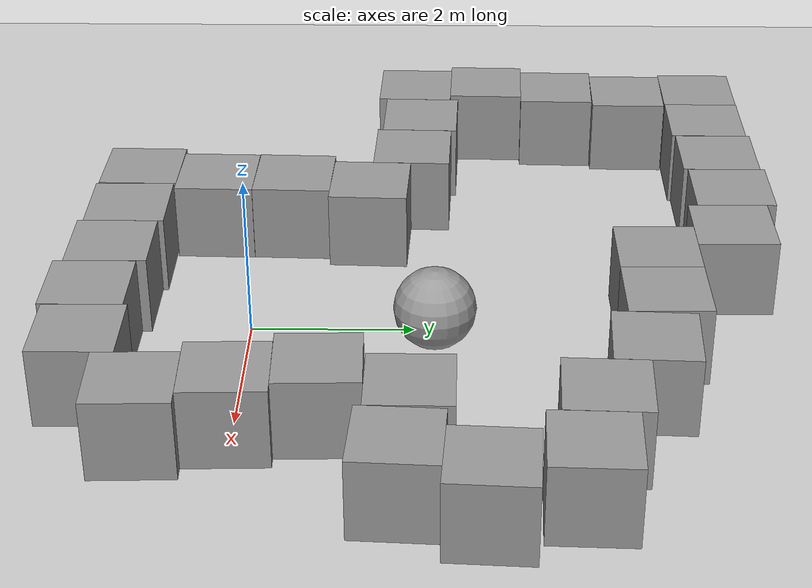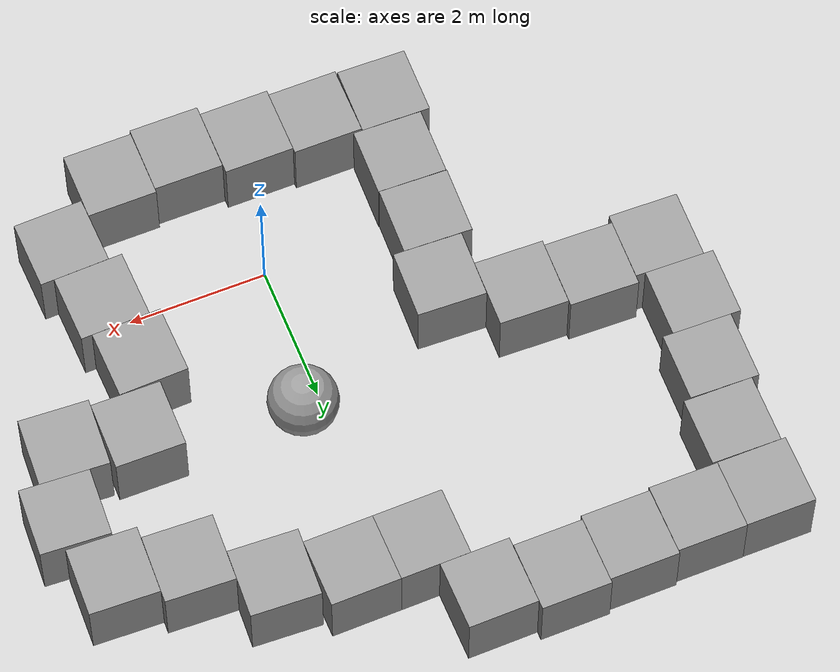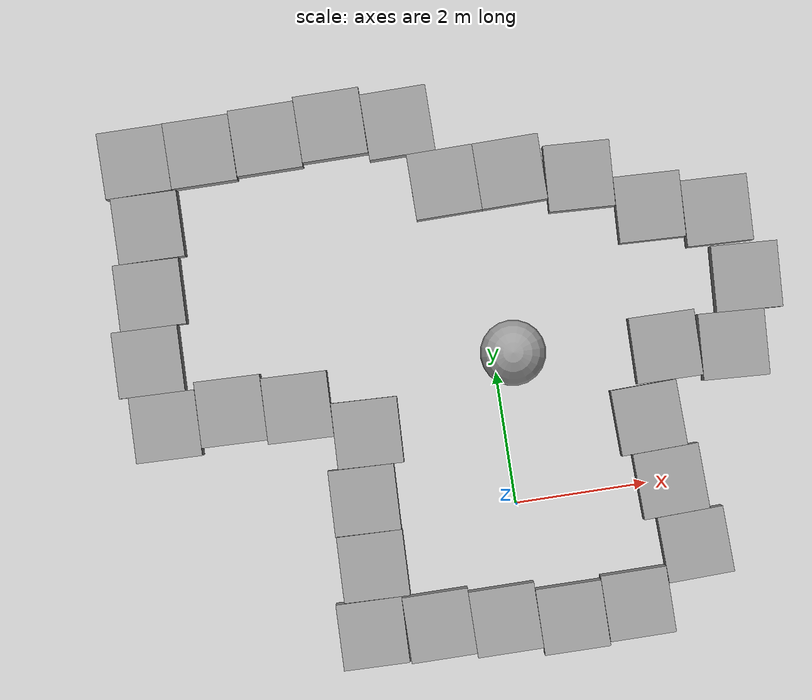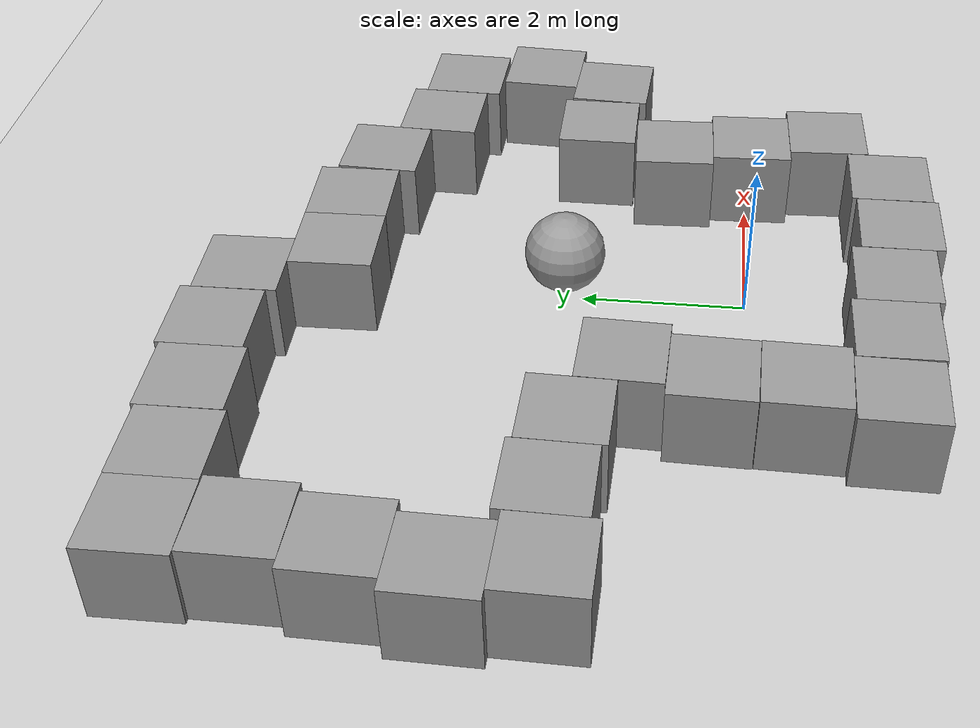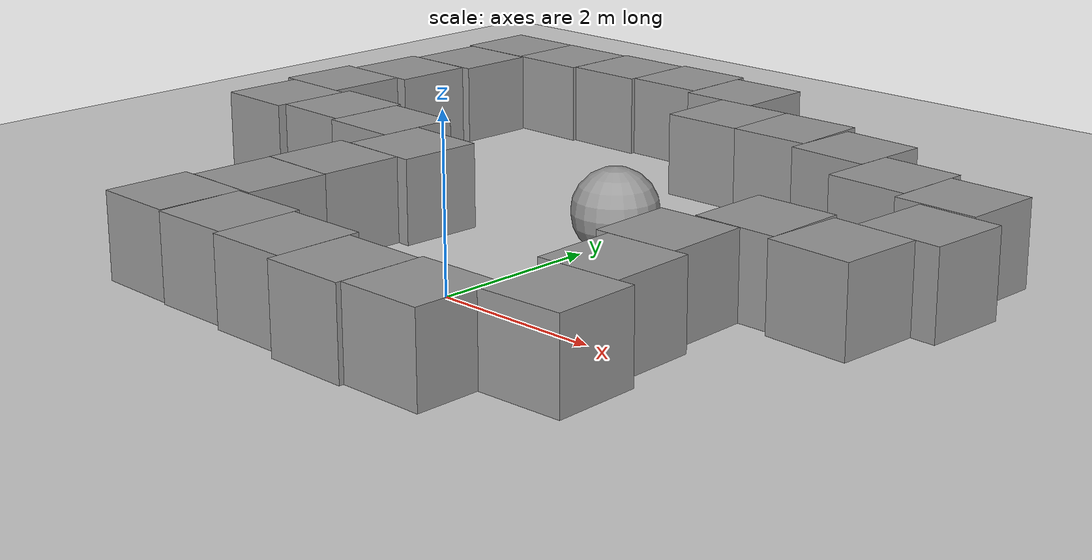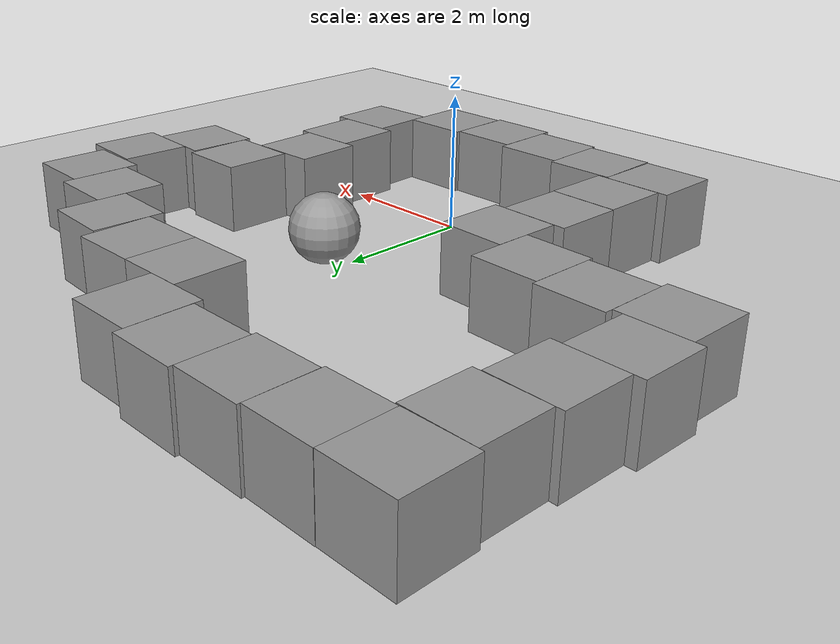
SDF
<sdf version="1.7">
 <world name="default">
  <gravity>0 0 -9.8</gravity>
  <physics type="ode">
   <max_step_size>0.001</max_step_size>
   <real_time_factor>1</real_time_factor>
   <real_time_update_rate>1000</real_time_update_rate>
  </physics>
  <scene><ambient>0.3 0.3 0.3 1</ambient><background>0.9 0.9 0.9 1</background><shadows>1</shadows></scene>
  <light name="sun" type="directional">
   <cast_shadows>0</cast_shadows>
   <pose>0 0 10 0 -0 0</pose>
   <diffuse>1 1 1 1</diffuse>
   <specular>0.5 0.5 0.5 1</specular>
   <direction>0.1 0.1 -0.9</direction>
   <attenuation><range>10</range></attenuation>
   <spot><inner_angle>0</inner_angle><outer_angle>0</outer_angle><falloff>0</falloff></spot>
  </light>
  <model name="ground_plane">
   <static>1</static>
   <link name="link">
    <collision name="collision">
     <geometry><plane><normal>0 0 1</normal><size>100 100</size></plane></geometry>
    </collision>
    <visual name="visual">
     <geometry><plane><normal>0 0 1</normal><size>100 100</size></plane></geometry>
     <material><ambient>0.8 0.8 0.8 1</ambient><diffuse>0.8 0.8 0.8 1</diffuse></material>
    </visual>
   </link>
  </model>
  <magnetic_field>6e-06 2.3e-05 -4.2e-05</magnetic_field>
  <atmosphere type="adiabatic"/>
  <audio><device>default</device></audio>
  <spherical_coordinates>
   <surface_model>EARTH_WGS84</surface_model>
   <latitude_deg>0</latitude_deg>
   <longitude_deg>0</longitude_deg>
   <elevation>0</elevation>
   <heading_deg>0</heading_deg>
  </spherical_coordinates>
  <model name="unit_box">
   <pose>-2.25182 0.392445 0.5 -0 -0 -0.031097</pose>
   <link name="link">
    <inertial>
     <mass>1</mass>
     <inertia>
      <ixx>0.166667</ixx>
      <ixy>0</ixy>
      <ixz>0</ixz>
      <iyy>0.166667</iyy>
      <iyz>0</iyz>
      <izz>0.166667</izz>
     </inertia>
    </inertial>
    <collision name="collision"><geometry><box><size>1 1 1</size></box></geometry></collision>
    <visual name="visual">
     <geometry><box><size>1 1 1</size></box></geometry>
     <material>
      <script><name>Gazebo/Grey</name><uri>file://media/materials/scripts/gazebo.material</uri></script>
     </material>
    </visual>
   </link>
  </model>
  <model name="unit_box_clone">
   <pose>-2.27097 -0.61048 0.499995 0 1e-05 -0.025137</pose>
   <link name="link">
    <inertial>
     <mass>1</mass>
     <inertia>
      <ixx>0.166667</ixx>
      <ixy>0</ixy>
      <ixz>0</ixz>
      <iyy>0.166667</iyy>
      <iyz>0</iyz>
      <izz>0.166667</izz>
     </inertia>
    </inertial>
    <collision name="collision"><geometry><box><size>1 1 1</size></box></geometry></collision>
    <visual name="visual">
     <geometry><box><size>1 1 1</size></box></geometry>
     <material>
      <script><name>Gazebo/Grey</name><uri>file://media/materials/scripts/gazebo.material</uri></script>
     </material>
    </visual>
   </link>
  </model>
  <model name="unit_box_clone_0">
   <pose>-2.42816 -1.61027 0.499995 0 -1e-05 -0.018613</pose>
   <link name="link">
    <inertial>
     <mass>1</mass>
     <inertia>
      <ixx>0.166667</ixx>
      <ixy>0</ixy>
      <ixz>0</ixz>
      <iyy>0.166667</iyy>
      <iyz>0</iyz>
      <izz>0.166667</izz>
     </inertia>
    </inertial>
    <collision name="collision"><geometry><box><size>1 1 1</size></box></geometry></collision>
    <visual name="visual">
     <geometry><box><size>1 1 1</size></box></geometry>
     <material>
      <script><name>Gazebo/Grey</name><uri>file://media/materials/scripts/gazebo.material</uri></script>
     </material>
    </visual>
   </link>
  </model>
  <model name="unit_box_clone_1">
   <pose>-1.41715 -1.64384 0.499996 -7e-06 -0 0.004381</pose>
   <link name="link">
    <inertial>
     <mass>1</mass>
     <inertia>
      <ixx>0.166667</ixx>
      <ixy>0</ixy>
      <ixz>0</ixz>
      <iyy>0.166667</iyy>
      <iyz>0</iyz>
      <izz>0.166667</izz>
     </inertia>
    </inertial>
    <collision name="collision"><geometry><box><size>1 1 1</size></box></geometry></collision>
    <visual name="visual">
     <geometry><box><size>1 1 1</size></box></geometry>
     <material>
      <script><name>Gazebo/Grey</name><uri>file://media/materials/scripts/gazebo.material</uri></script>
     </material>
    </visual>
   </link>
  </model>
  <model name="unit_box_clone_2">
   <pose>-0.416755 -1.70812 0.5 0 -0 0.004128</pose>
   <link name="link">
    <inertial>
     <mass>1</mass>
     <inertia>
      <ixx>0.166667</ixx>
      <ixy>0</ixy>
      <ixz>0</ixz>
      <iyy>0.166667</iyy>
      <iyz>0</iyz>
      <izz>0.166667</izz>
     </inertia>
    </inertial>
    <collision name="collision"><geometry><box><size>1 1 1</size></box></geometry></collision>
    <visual name="visual">
     <geometry><box><size>1 1 1</size></box></geometry>
     <material>
      <script><name>Gazebo/Grey</name><uri>file://media/materials/scripts/gazebo.material</uri></script>
     </material>
    </visual>
   </link>
  </model>
  <model name="unit_box_clone_3">
   <pose>0.585308 -1.82305 0.5 0 0 -8e-06</pose>
   <link name="link">
    <inertial>
     <mass>1</mass>
     <inertia>
      <ixx>0.166667</ixx>
      <ixy>0</ixy>
      <ixz>0</ixz>
      <iyy>0.166667</iyy>
      <iyz>0</iyz>
      <izz>0.166667</izz>
     </inertia>
    </inertial>
    <collision name="collision"><geometry><box><size>1 1 1</size></box></geometry></collision>
    <visual name="visual">
     <geometry><box><size>1 1 1</size></box></geometry>
     <material>
      <script><name>Gazebo/Grey</name><uri>file://media/materials/scripts/gazebo.material</uri></script>
     </material>
    </visual>
   </link>
  </model>
  <model name="unit_box_clone_4">
   <pose>1.58761 -1.76639 0.499987 7e-06 -0 0.005162</pose>
   <link name="link">
    <inertial>
     <mass>1</mass>
     <inertia>
      <ixx>0.166667</ixx>
      <ixy>0</ixy>
      <ixz>0</ixz>
      <iyy>0.166667</iyy>
      <iyz>0</iyz>
      <izz>0.166667</izz>
     </inertia>
    </inertial>
    <collision name="collision"><geometry><box><size>1 1 1</size></box></geometry></collision>
    <visual name="visual">
     <geometry><box><size>1 1 1</size></box></geometry>
     <material>
      <script><name>Gazebo/Grey</name><uri>file://media/materials/scripts/gazebo.material</uri></script>
     </material>
    </visual>
   </link>
  </model>
  <model name="unit_box_clone_5">
   <pose>2.57701 -1.0103 0.499991 0 -0 0.032619</pose>
   <link name="link">
    <inertial>
     <mass>1</mass>
     <inertia>
      <ixx>0.166667</ixx>
      <ixy>0</ixy>
      <ixz>0</ixz>
      <iyy>0.166667</iyy>
      <iyz>0</iyz>
      <izz>0.166667</izz>
     </inertia>
    </inertial>
    <collision name="collision"><geometry><box><size>1 1 1</size></box></geometry></collision>
    <visual name="visual">
     <geometry><box><size>1 1 1</size></box></geometry>
     <material>
      <script><name>Gazebo/Grey</name><uri>file://media/materials/scripts/gazebo.material</uri></script>
     </material>
    </visual>
   </link>
  </model>
  <model name="unit_box_clone_6">
   <pose>2.35288 -0.016406 0.499991 0 -1e-06 0.031267</pose>
   <link name="link">
    <inertial>
     <mass>1</mass>
     <inertia>
      <ixx>0.166667</ixx>
      <ixy>0</ixy>
      <ixz>0</ixz>
      <iyy>0.166667</iyy>
      <iyz>0</iyz>
      <izz>0.166667</izz>
     </inertia>
    </inertial>
    <collision name="collision"><geometry><box><size>1 1 1</size></box></geometry></collision>
    <visual name="visual">
     <geometry><box><size>1 1 1</size></box></geometry>
     <material>
      <script><name>Gazebo/Grey</name><uri>file://media/materials/scripts/gazebo.material</uri></script>
     </material>
    </visual>
   </link>
  </model>
  <model name="unit_box_clone_7">
   <pose>2.16569 0.979389 0.499995 -1e-05 -0 0.029721</pose>
   <link name="link">
    <inertial>
     <mass>1</mass>
     <inertia>
      <ixx>0.166667</ixx>
      <ixy>0</ixy>
      <ixz>0</ixz>
      <iyy>0.166667</iyy>
      <iyz>0</iyz>
      <izz>0.166667</izz>
     </inertia>
    </inertial>
    <collision name="collision"><geometry><box><size>1 1 1</size></box></geometry></collision>
    <visual name="visual">
     <geometry><box><size>1 1 1</size></box></geometry>
     <material>
      <script><name>Gazebo/Grey</name><uri>file://media/materials/scripts/gazebo.material</uri></script>
     </material>
    </visual>
   </link>
  </model>
  <model name="unit_box_clone_8">
   <pose>-2.05973 1.38887 0.5 0 0 -0.036295</pose>
   <link name="link">
    <inertial>
     <mass>1</mass>
     <inertia>
      <ixx>0.166667</ixx>
      <ixy>0</ixy>
      <ixz>0</ixz>
      <iyy>0.166667</iyy>
      <iyz>0</iyz>
      <izz>0.166667</izz>
     </inertia>
    </inertial>
    <collision name="collision"><geometry><box><size>1 1 1</size></box></geometry></collision>
    <visual name="visual">
     <geometry><box><size>1 1 1</size></box></geometry>
     <material>
      <script><name>Gazebo/Grey</name><uri>file://media/materials/scripts/gazebo.material</uri></script>
     </material>
    </visual>
   </link>
  </model>
  <model name="unit_sphere">
   <pose>0.296153 2.25119 0.5 0 -0 0</pose>
   <link name="link">
    <inertial>
     <mass>1</mass>
     <inertia><ixx>0.1</ixx><ixy>0</ixy><ixz>0</ixz><iyy>0.1</iyy><iyz>0</iyz><izz>0.1</izz></inertia>
    </inertial>
    <collision name="collision"><geometry><sphere><radius>0.5</radius></sphere></geometry></collision>
    <visual name="visual">
     <geometry><sphere><radius>0.5</radius></sphere></geometry>
     <material>
      <script><name>Gazebo/Grey</name><uri>file://media/materials/scripts/gazebo.material</uri></script>
     </material>
    </visual>
   </link>
  </model>
  <model name="unit_box_0">
   <pose>2.57428 1.99937 0.499971 0 0 -0.005789</pose>
   <link name="link">
    <inertial>
     <mass>1</mass>
     <inertia>
      <ixx>0.166667</ixx>
      <ixy>0</ixy>
      <ixz>0</ixz>
      <iyy>0.166667</iyy>
      <iyz>0</iyz>
      <izz>0.166667</izz>
     </inertia>
    </inertial>
    <collision name="collision"><geometry><box><size>1 1 1</size></box></geometry></collision>
    <visual name="visual">
     <geometry><box><size>1 1 1</size></box></geometry>
     <material>
      <script><name>Gazebo/Grey</name><uri>file://media/materials/scripts/gazebo.material</uri></script>
     </material>
    </visual>
   </link>
  </model>
  <model name="unit_box_1">
   <pose>3.59321 1.87989 0.5 0 -0 -0.054902</pose>
   <link name="link">
    <inertial>
     <mass>1</mass>
     <inertia>
      <ixx>0.166667</ixx>
      <ixy>0</ixy>
      <ixz>0</ixz>
      <iyy>0.166667</iyy>
      <iyz>0</iyz>
      <izz>0.166667</izz>
     </inertia>
    </inertial>
    <collision name="collision"><geometry><box><size>1 1 1</size></box></geometry></collision>
    <visual name="visual">
     <geometry><box><size>1 1 1</size></box></geometry>
     <material>
      <script><name>Gazebo/Grey</name><uri>file://media/materials/scripts/gazebo.material</uri></script>
     </material>
    </visual>
   </link>
  </model>
  <model name="unit_box_2">
   <pose>3.93704 2.86251 0.5 0 0 -0.054902</pose>
   <link name="link">
    <inertial>
     <mass>1</mass>
     <inertia>
      <ixx>0.166667</ixx>
      <ixy>0</ixy>
      <ixz>0</ixz>
      <iyy>0.166667</iyy>
      <iyz>0</iyz>
      <izz>0.166667</izz>
     </inertia>
    </inertial>
    <collision name="collision"><geometry><box><size>1 1 1</size></box></geometry></collision>
    <visual name="visual">
     <geometry><box><size>1 1 1</size></box></geometry>
     <material>
      <script><name>Gazebo/Grey</name><uri>file://media/materials/scripts/gazebo.material</uri></script>
     </material>
    </visual>
   </link>
  </model>
  <model name="unit_box_3">
   <pose>3.64192 3.91233 0.499995 -0 1e-05 -0.034233</pose>
   <link name="link">
    <inertial>
     <mass>1</mass>
     <inertia>
      <ixx>0.166667</ixx>
      <ixy>0</ixy>
      <ixz>0</ixz>
      <iyy>0.166667</iyy>
      <iyz>0</iyz>
      <izz>0.166667</izz>
     </inertia>
    </inertial>
    <collision name="collision"><geometry><box><size>1 1 1</size></box></geometry></collision>
    <visual name="visual">
     <geometry><box><size>1 1 1</size></box></geometry>
     <material>
      <script><name>Gazebo/Grey</name><uri>file://media/materials/scripts/gazebo.material</uri></script>
     </material>
    </visual>
   </link>
  </model>
  <model name="unit_box_4">
   <pose>2.64684 4.11583 0.499995 0 -1e-05 -0.038598</pose>
   <link name="link">
    <inertial>
     <mass>1</mass>
     <inertia>
      <ixx>0.166667</ixx>
      <ixy>0</ixy>
      <ixz>0</ixz>
      <iyy>0.166667</iyy>
      <iyz>0</iyz>
      <izz>0.166667</izz>
     </inertia>
    </inertial>
    <collision name="collision"><geometry><box><size>1 1 1</size></box></geometry></collision>
    <visual name="visual">
     <geometry><box><size>1 1 1</size></box></geometry>
     <material>
      <script><name>Gazebo/Grey</name><uri>file://media/materials/scripts/gazebo.material</uri></script>
     </material>
    </visual>
   </link>
  </model>
  <model name="unit_box_5">
   <pose>1.67072 4.73564 0.499995 -0 -1e-05 -0.047411</pose>
   <link name="link">
    <inertial>
     <mass>1</mass>
     <inertia>
      <ixx>0.166667</ixx>
      <ixy>0</ixy>
      <ixz>0</ixz>
      <iyy>0.166667</iyy>
      <iyz>0</iyz>
      <izz>0.166667</izz>
     </inertia>
    </inertial>
    <collision name="collision"><geometry><box><size>1 1 1</size></box></geometry></collision>
    <visual name="visual">
     <geometry><box><size>1 1 1</size></box></geometry>
     <material>
      <script><name>Gazebo/Grey</name><uri>file://media/materials/scripts/gazebo.material</uri></script>
     </material>
    </visual>
   </link>
  </model>
  <model name="unit_box_6">
   <pose>0.650793 4.95621 0.499995 0 1e-05 0.012748</pose>
   <link name="link">
    <inertial>
     <mass>1</mass>
     <inertia>
      <ixx>0.166667</ixx>
      <ixy>0</ixy>
      <ixz>0</ixz>
      <iyy>0.166667</iyy>
      <iyz>0</iyz>
      <izz>0.166667</izz>
     </inertia>
    </inertial>
    <collision name="collision"><geometry><box><size>1 1 1</size></box></geometry></collision>
    <visual name="visual">
     <geometry><box><size>1 1 1</size></box></geometry>
     <material>
      <script><name>Gazebo/Grey</name><uri>file://media/materials/scripts/gazebo.material</uri></script>
     </material>
    </visual>
   </link>
  </model>
  <model name="unit_box_7">
   <pose>-0.349152 4.9441 0.499995 -0 -9e-06 0.012748</pose>
   <link name="link">
    <inertial>
     <mass>1</mass>
     <inertia>
      <ixx>0.166667</ixx>
      <ixy>0</ixy>
      <ixz>0</ixz>
      <iyy>0.166667</iyy>
      <iyz>0</iyz>
      <izz>0.166667</izz>
     </inertia>
    </inertial>
    <collision name="collision"><geometry><box><size>1 1 1</size></box></geometry></collision>
    <visual name="visual">
     <geometry><box><size>1 1 1</size></box></geometry>
     <material>
      <script><name>Gazebo/Grey</name><uri>file://media/materials/scripts/gazebo.material</uri></script>
     </material>
    </visual>
   </link>
  </model>
  <model name="unit_box_8">
   <pose>-3.04517 1.92565 0.5 0 -1e-06 -0.027725</pose>
   <link name="link">
    <inertial>
     <mass>1</mass>
     <inertia>
      <ixx>0.166667</ixx>
      <ixy>0</ixy>
      <ixz>0</ixz>
      <iyy>0.166667</iyy>
      <iyz>0</iyz>
      <izz>0.166667</izz>
     </inertia>
    </inertial>
    <collision name="collision"><geometry><box><size>1 1 1</size></box></geometry></collision>
    <visual name="visual">
     <geometry><box><size>1 1 1</size></box></geometry>
     <material>
      <script><name>Gazebo/Grey</name><uri>file://media/materials/scripts/gazebo.material</uri></script>
     </material>
    </visual>
   </link>
  </model>
  <model name="unit_box_9">
   <pose>-4.04392 2.02079 0.5 0 0 -0.025708</pose>
   <link name="link">
    <inertial>
     <mass>1</mass>
     <inertia>
      <ixx>0.166667</ixx>
      <ixy>0</ixy>
      <ixz>0</ixz>
      <iyy>0.166667</iyy>
      <iyz>0</iyz>
      <izz>0.166667</izz>
     </inertia>
    </inertial>
    <collision name="collision"><geometry><box><size>1 1 1</size></box></geometry></collision>
    <visual name="visual">
     <geometry><box><size>1 1 1</size></box></geometry>
     <material>
      <script><name>Gazebo/Grey</name><uri>file://media/materials/scripts/gazebo.material</uri></script>
     </material>
    </visual>
   </link>
  </model>
  <model name="unit_box_10">
   <pose>-5.04721 1.93625 0.5 0 0 -0.023803</pose>
   <link name="link">
    <inertial>
     <mass>1</mass>
     <inertia>
      <ixx>0.166667</ixx>
      <ixy>0</ixy>
      <ixz>0</ixz>
      <iyy>0.166667</iyy>
      <iyz>0</iyz>
      <izz>0.166667</izz>
     </inertia>
    </inertial>
    <collision name="collision"><geometry><box><size>1 1 1</size></box></geometry></collision>
    <visual name="visual">
     <geometry><box><size>1 1 1</size></box></geometry>
     <material>
      <script><name>Gazebo/Grey</name><uri>file://media/materials/scripts/gazebo.material</uri></script>
     </material>
    </visual>
   </link>
  </model>
  <model name="unit_box_11">
   <pose>-5.15928 2.93926 0.5 -0 -0 -0.023778</pose>
   <link name="link">
    <inertial>
     <mass>1</mass>
     <inertia>
      <ixx>0.166667</ixx>
      <ixy>0</ixy>
      <ixz>0</ixz>
      <iyy>0.166667</iyy>
      <iyz>0</iyz>
      <izz>0.166667</izz>
     </inertia>
    </inertial>
    <collision name="collision"><geometry><box><size>1 1 1</size></box></geometry></collision>
    <visual name="visual">
     <geometry><box><size>1 1 1</size></box></geometry>
     <material>
      <script><name>Gazebo/Grey</name><uri>file://media/materials/scripts/gazebo.material</uri></script>
     </material>
    </visual>
   </link>
  </model>
  <model name="unit_box_12">
   <pose>-4.98827 3.93553 0.5 0 0 -0.023692</pose>
   <link name="link">
    <inertial>
     <mass>1</mass>
     <inertia>
      <ixx>0.166667</ixx>
      <ixy>0</ixy>
      <ixz>0</ixz>
      <iyy>0.166667</iyy>
      <iyz>0</iyz>
      <izz>0.166667</izz>
     </inertia>
    </inertial>
    <collision name="collision"><geometry><box><size>1 1 1</size></box></geometry></collision>
    <visual name="visual">
     <geometry><box><size>1 1 1</size></box></geometry>
     <material>
      <script><name>Gazebo/Grey</name><uri>file://media/materials/scripts/gazebo.material</uri></script>
     </material>
    </visual>
   </link>
  </model>
  <model name="unit_box_13">
   <pose>-4.86314 4.93855 0.499995 0 1e-05 -0.012238</pose>
   <link name="link">
    <inertial>
     <mass>1</mass>
     <inertia>
      <ixx>0.166667</ixx>
      <ixy>0</ixy>
      <ixz>0</ixz>
      <iyy>0.166667</iyy>
      <iyz>0</iyz>
      <izz>0.166667</izz>
     </inertia>
    </inertial>
    <collision name="collision"><geometry><box><size>1 1 1</size></box></geometry></collision>
    <visual name="visual">
     <geometry><box><size>1 1 1</size></box></geometry>
     <material>
      <script><name>Gazebo/Grey</name><uri>file://media/materials/scripts/gazebo.material</uri></script>
     </material>
    </visual>
   </link>
  </model>
  <model name="unit_box_14">
   <pose>-4.91893 5.94445 0.5 0 0 -0.000927</pose>
   <link name="link">
    <inertial>
     <mass>1</mass>
     <inertia>
      <ixx>0.166667</ixx>
      <ixy>0</ixy>
      <ixz>0</ixz>
      <iyy>0.166667</iyy>
      <iyz>0</iyz>
      <izz>0.166667</izz>
     </inertia>
    </inertial>
    <collision name="collision"><geometry><box><size>1 1 1</size></box></geometry></collision>
    <visual name="visual">
     <geometry><box><size>1 1 1</size></box></geometry>
     <material>
      <script><name>Gazebo/Grey</name><uri>file://media/materials/scripts/gazebo.material</uri></script>
     </material>
    </visual>
   </link>
  </model>
  <model name="unit_box_15">
   <pose>-3.91887 5.94823 0.499996 7e-06 -0 -0.000832</pose>
   <link name="link">
    <inertial>
     <mass>1</mass>
     <inertia>
      <ixx>0.166667</ixx>
      <ixy>0</ixy>
      <ixz>0</ixz>
      <iyy>0.166667</iyy>
      <iyz>0</iyz>
      <izz>0.166667</izz>
     </inertia>
    </inertial>
    <collision name="collision"><geometry><box><size>1 1 1</size></box></geometry></collision>
    <visual name="visual">
     <geometry><box><size>1 1 1</size></box></geometry>
     <material>
      <script><name>Gazebo/Grey</name><uri>file://media/materials/scripts/gazebo.material</uri></script>
     </material>
    </visual>
   </link>
  </model>
  <model name="unit_box_16">
   <pose>-2.91658 5.99176 0.5 0 -0 0.004055</pose>
   <link name="link">
    <inertial>
     <mass>1</mass>
     <inertia>
      <ixx>0.166667</ixx>
      <ixy>0</ixy>
      <ixz>0</ixz>
      <iyy>0.166667</iyy>
      <iyz>0</iyz>
      <izz>0.166667</izz>
     </inertia>
    </inertial>
    <collision name="collision"><geometry><box><size>1 1 1</size></box></geometry></collision>
    <visual name="visual">
     <geometry><box><size>1 1 1</size></box></geometry>
     <material>
      <script><name>Gazebo/Grey</name><uri>file://media/materials/scripts/gazebo.material</uri></script>
     </material>
    </visual>
   </link>
  </model>
  <model name="unit_box_17">
   <pose>-1.91646 6.05102 0.5 0 -0 0.004599</pose>
   <link name="link">
    <inertial>
     <mass>1</mass>
     <inertia>
      <ixx>0.166667</ixx>
      <ixy>0</ixy>
      <ixz>0</ixz>
      <iyy>0.166667</iyy>
      <iyz>0</iyz>
      <izz>0.166667</izz>
     </inertia>
    </inertial>
    <collision name="collision"><geometry><box><size>1 1 1</size></box></geometry></collision>
    <visual name="visual">
     <geometry><box><size>1 1 1</size></box></geometry>
     <material>
      <script><name>Gazebo/Grey</name><uri>file://media/materials/scripts/gazebo.material</uri></script>
     </material>
    </visual>
   </link>
  </model>
  <model name="unit_box_18">
   <pose>-0.912695 5.93786 0.499995 0 1e-05 0.011075</pose>
   <link name="link">
    <inertial>
     <mass>1</mass>
     <inertia>
      <ixx>0.166667</ixx>
      <ixy>0</ixy>
      <ixz>0</ixz>
      <iyy>0.166667</iyy>
      <iyz>0</iyz>
      <izz>0.166667</izz>
     </inertia>
    </inertial>
    <collision name="collision"><geometry><box><size>1 1 1</size></box></geometry></collision>
    <visual name="visual">
     <geometry><box><size>1 1 1</size></box></geometry>
     <material>
      <script><name>Gazebo/Grey</name><uri>file://media/materials/scripts/gazebo.material</uri></script>
     </material>
    </visual>
   </link>
  </model>
 </world>
</sdf>
